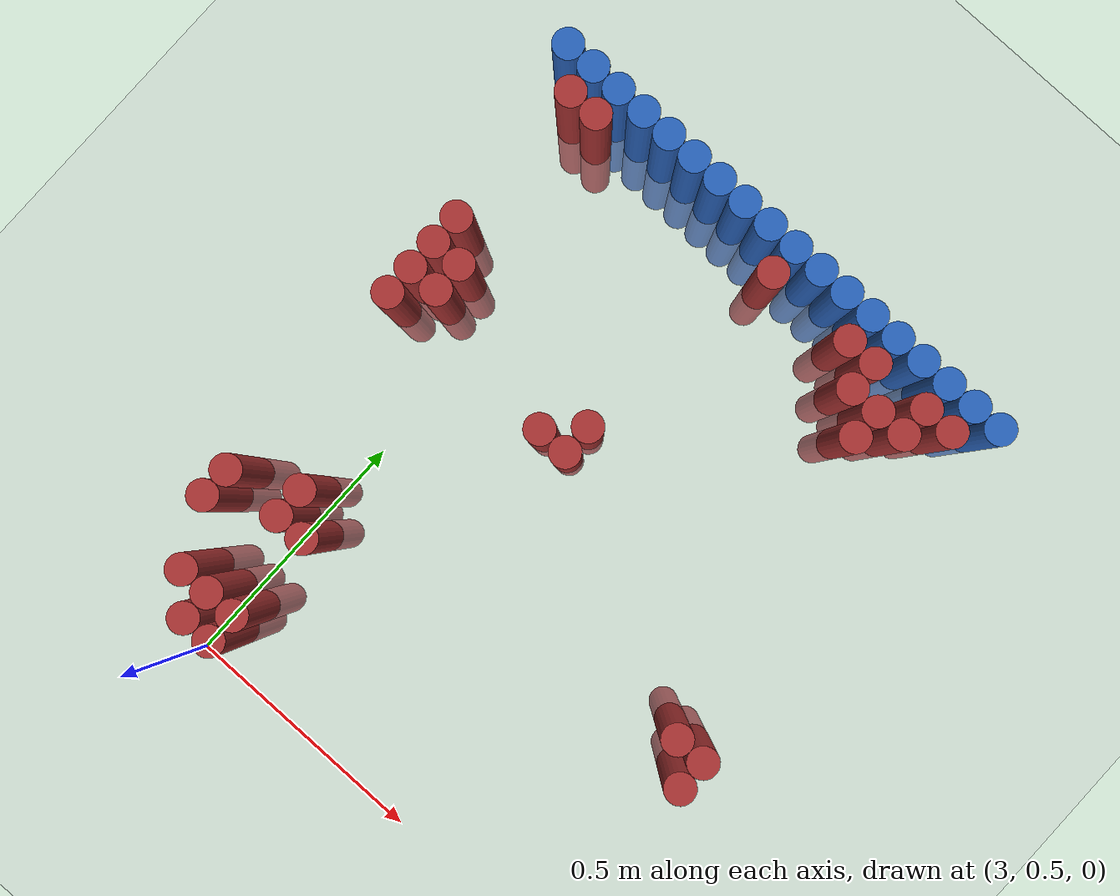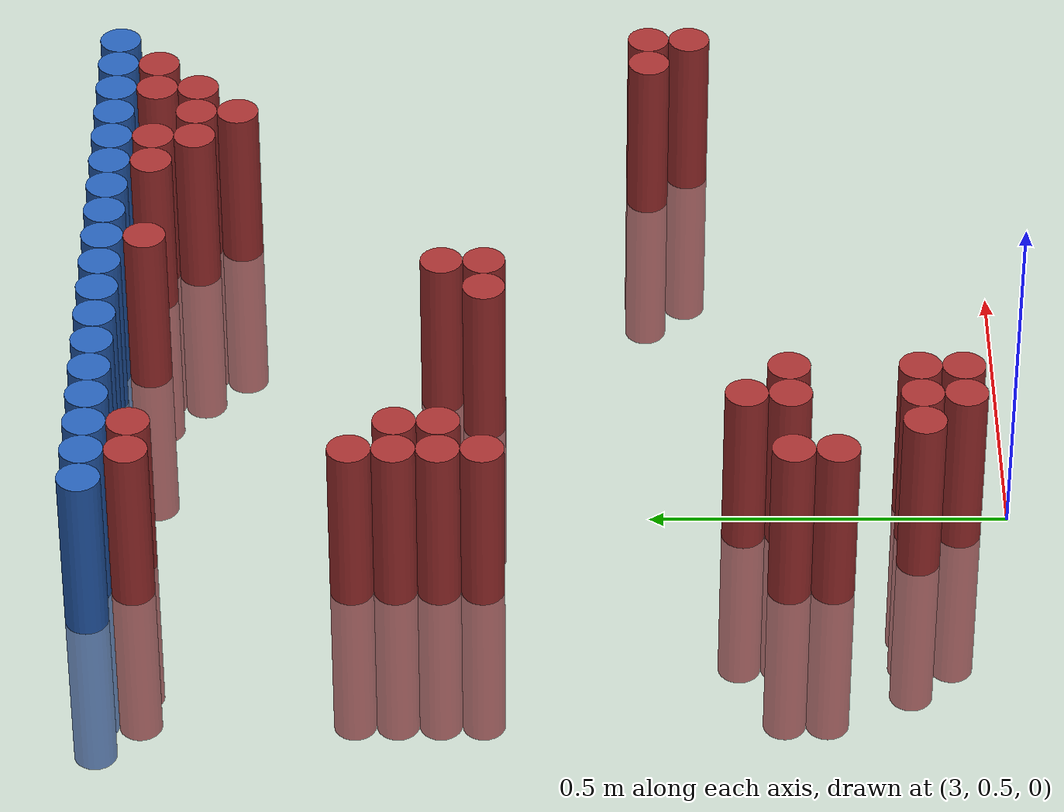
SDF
<sdf version="1.6">
 <world name="default">
  <model name="ground_plane">
   <static>1</static>
   <link name="link">
    <collision name="collision">
     <geometry><plane><normal>0 0 1</normal><size>100 100</size></plane></geometry>
     <surface><friction><ode><mu>100</mu><mu2>50</mu2></ode></friction></surface>
    </collision>
    <visual name="visual">
     <cast_shadows>0</cast_shadows>
     <geometry><plane><normal>0 0 1</normal><size>100 100</size></plane></geometry>
     <material>
      <script><uri>file://media/materials/scripts/gazebo.material</uri><name>Gazebo/Grey</name></script>
     </material>
    </visual>
   </link>
  </model>
  <model name="unit_cylinder_107">
   <static>1</static>
   <pose>2.790000 1.770000 0.000000 0.000000 0.000000 0.000000</pose>
   <link name="link">
    <inertial>
     <mass>1</mass>
     <inertia><ixx>0.145833</ixx><ixy>0</ixy><ixz>0</ixz><iyy>0.145833</iyy><iyz>0</iyz><izz>0.125</izz></inertia>
    </inertial>
    <collision name="collision">
     <geometry><cylinder><radius>0.030000</radius><length>0.5</length></cylinder></geometry>
    </collision>
    <visual name="visual">
     <geometry><cylinder><radius>0.030000</radius><length>0.5</length></cylinder></geometry>
     <material>
      <ambient>0.152000 0.379000 0.720000 1</ambient>
      <diffuse>0.152000 0.379000 0.720000 1</diffuse>
     </material>
     <material>
      <script><name>Gazebo/Grey</name><uri>file://media/materials/scripts/gazebo.material</uri></script>
     </material>
    </visual>
   </link>
  </model>
  <model name="unit_cylinder_108">
   <static>1</static>
   <pose>2.850000 1.770000 0.000000 0.000000 0.000000 0.000000</pose>
   <link name="link">
    <inertial>
     <mass>1</mass>
     <inertia><ixx>0.145833</ixx><ixy>0</ixy><ixz>0</ixz><iyy>0.145833</iyy><iyz>0</iyz><izz>0.125</izz></inertia>
    </inertial>
    <collision name="collision">
     <geometry><cylinder><radius>0.030000</radius><length>0.5</length></cylinder></geometry>
    </collision>
    <visual name="visual">
     <geometry><cylinder><radius>0.030000</radius><length>0.5</length></cylinder></geometry>
     <material>
      <ambient>0.152000 0.379000 0.720000 1</ambient>
      <diffuse>0.152000 0.379000 0.720000 1</diffuse>
     </material>
     <material>
      <script><name>Gazebo/Grey</name><uri>file://media/materials/scripts/gazebo.material</uri></script>
     </material>
    </visual>
   </link>
  </model>
  <model name="unit_cylinder_109">
   <static>1</static>
   <pose>2.910000 1.770000 0.000000 0.000000 0.000000 0.000000</pose>
   <link name="link">
    <inertial>
     <mass>1</mass>
     <inertia><ixx>0.145833</ixx><ixy>0</ixy><ixz>0</ixz><iyy>0.145833</iyy><iyz>0</iyz><izz>0.125</izz></inertia>
    </inertial>
    <collision name="collision">
     <geometry><cylinder><radius>0.030000</radius><length>0.5</length></cylinder></geometry>
    </collision>
    <visual name="visual">
     <geometry><cylinder><radius>0.030000</radius><length>0.5</length></cylinder></geometry>
     <material>
      <ambient>0.152000 0.379000 0.720000 1</ambient>
      <diffuse>0.152000 0.379000 0.720000 1</diffuse>
     </material>
     <material>
      <script><name>Gazebo/Grey</name><uri>file://media/materials/scripts/gazebo.material</uri></script>
     </material>
    </visual>
   </link>
  </model>
  <model name="unit_cylinder_110">
   <static>1</static>
   <pose>2.970000 1.770000 0.000000 0.000000 0.000000 0.000000</pose>
   <link name="link">
    <inertial>
     <mass>1</mass>
     <inertia><ixx>0.145833</ixx><ixy>0</ixy><ixz>0</ixz><iyy>0.145833</iyy><iyz>0</iyz><izz>0.125</izz></inertia>
    </inertial>
    <collision name="collision">
     <geometry><cylinder><radius>0.030000</radius><length>0.5</length></cylinder></geometry>
    </collision>
    <visual name="visual">
     <geometry><cylinder><radius>0.030000</radius><length>0.5</length></cylinder></geometry>
     <material>
      <ambient>0.152000 0.379000 0.720000 1</ambient>
      <diffuse>0.152000 0.379000 0.720000 1</diffuse>
     </material>
     <material>
      <script><name>Gazebo/Grey</name><uri>file://media/materials/scripts/gazebo.material</uri></script>
     </material>
    </visual>
   </link>
  </model>
  <model name="unit_cylinder_111">
   <static>1</static>
   <pose>3.030000 1.770000 0.000000 0.000000 0.000000 0.000000</pose>
   <link name="link">
    <inertial>
     <mass>1</mass>
     <inertia><ixx>0.145833</ixx><ixy>0</ixy><ixz>0</ixz><iyy>0.145833</iyy><iyz>0</iyz><izz>0.125</izz></inertia>
    </inertial>
    <collision name="collision">
     <geometry><cylinder><radius>0.030000</radius><length>0.5</length></cylinder></geometry>
    </collision>
    <visual name="visual">
     <geometry><cylinder><radius>0.030000</radius><length>0.5</length></cylinder></geometry>
     <material>
      <ambient>0.152000 0.379000 0.720000 1</ambient>
      <diffuse>0.152000 0.379000 0.720000 1</diffuse>
     </material>
     <material>
      <script><name>Gazebo/Grey</name><uri>file://media/materials/scripts/gazebo.material</uri></script>
     </material>
    </visual>
   </link>
  </model>
  <model name="unit_cylinder_112">
   <static>1</static>
   <pose>3.090000 1.770000 0.000000 0.000000 0.000000 0.000000</pose>
   <link name="link">
    <inertial>
     <mass>1</mass>
     <inertia><ixx>0.145833</ixx><ixy>0</ixy><ixz>0</ixz><iyy>0.145833</iyy><iyz>0</iyz><izz>0.125</izz></inertia>
    </inertial>
    <collision name="collision">
     <geometry><cylinder><radius>0.030000</radius><length>0.5</length></cylinder></geometry>
    </collision>
    <visual name="visual">
     <geometry><cylinder><radius>0.030000</radius><length>0.5</length></cylinder></geometry>
     <material>
      <ambient>0.152000 0.379000 0.720000 1</ambient>
      <diffuse>0.152000 0.379000 0.720000 1</diffuse>
     </material>
     <material>
      <script><name>Gazebo/Grey</name><uri>file://media/materials/scripts/gazebo.material</uri></script>
     </material>
    </visual>
   </link>
  </model>
  <model name="unit_cylinder_113">
   <static>1</static>
   <pose>3.150000 1.770000 0.000000 0.000000 0.000000 0.000000</pose>
   <link name="link">
    <inertial>
     <mass>1</mass>
     <inertia><ixx>0.145833</ixx><ixy>0</ixy><ixz>0</ixz><iyy>0.145833</iyy><iyz>0</iyz><izz>0.125</izz></inertia>
    </inertial>
    <collision name="collision">
     <geometry><cylinder><radius>0.030000</radius><length>0.5</length></cylinder></geometry>
    </collision>
    <visual name="visual">
     <geometry><cylinder><radius>0.030000</radius><length>0.5</length></cylinder></geometry>
     <material>
      <ambient>0.152000 0.379000 0.720000 1</ambient>
      <diffuse>0.152000 0.379000 0.720000 1</diffuse>
     </material>
     <material>
      <script><name>Gazebo/Grey</name><uri>file://media/materials/scripts/gazebo.material</uri></script>
     </material>
    </visual>
   </link>
  </model>
  <model name="unit_cylinder_114">
   <static>1</static>
   <pose>3.210000 1.770000 0.000000 0.000000 0.000000 0.000000</pose>
   <link name="link">
    <inertial>
     <mass>1</mass>
     <inertia><ixx>0.145833</ixx><ixy>0</ixy><ixz>0</ixz><iyy>0.145833</iyy><iyz>0</iyz><izz>0.125</izz></inertia>
    </inertial>
    <collision name="collision">
     <geometry><cylinder><radius>0.030000</radius><length>0.5</length></cylinder></geometry>
    </collision>
    <visual name="visual">
     <geometry><cylinder><radius>0.030000</radius><length>0.5</length></cylinder></geometry>
     <material>
      <ambient>0.152000 0.379000 0.720000 1</ambient>
      <diffuse>0.152000 0.379000 0.720000 1</diffuse>
     </material>
     <material>
      <script><name>Gazebo/Grey</name><uri>file://media/materials/scripts/gazebo.material</uri></script>
     </material>
    </visual>
   </link>
  </model>
  <model name="unit_cylinder_115">
   <static>1</static>
   <pose>3.270000 1.770000 0.000000 0.000000 0.000000 0.000000</pose>
   <link name="link">
    <inertial>
     <mass>1</mass>
     <inertia><ixx>0.145833</ixx><ixy>0</ixy><ixz>0</ixz><iyy>0.145833</iyy><iyz>0</iyz><izz>0.125</izz></inertia>
    </inertial>
    <collision name="collision">
     <geometry><cylinder><radius>0.030000</radius><length>0.5</length></cylinder></geometry>
    </collision>
    <visual name="visual">
     <geometry><cylinder><radius>0.030000</radius><length>0.5</length></cylinder></geometry>
     <material>
      <ambient>0.152000 0.379000 0.720000 1</ambient>
      <diffuse>0.152000 0.379000 0.720000 1</diffuse>
     </material>
     <material>
      <script><name>Gazebo/Grey</name><uri>file://media/materials/scripts/gazebo.material</uri></script>
     </material>
    </visual>
   </link>
  </model>
  <model name="unit_cylinder_116">
   <static>1</static>
   <pose>3.330000 1.770000 0.000000 0.000000 0.000000 0.000000</pose>
   <link name="link">
    <inertial>
     <mass>1</mass>
     <inertia><ixx>0.145833</ixx><ixy>0</ixy><ixz>0</ixz><iyy>0.145833</iyy><iyz>0</iyz><izz>0.125</izz></inertia>
    </inertial>
    <collision name="collision">
     <geometry><cylinder><radius>0.030000</radius><length>0.5</length></cylinder></geometry>
    </collision>
    <visual name="visual">
     <geometry><cylinder><radius>0.030000</radius><length>0.5</length></cylinder></geometry>
     <material>
      <ambient>0.152000 0.379000 0.720000 1</ambient>
      <diffuse>0.152000 0.379000 0.720000 1</diffuse>
     </material>
     <material>
      <script><name>Gazebo/Grey</name><uri>file://media/materials/scripts/gazebo.material</uri></script>
     </material>
    </visual>
   </link>
  </model>
  <model name="unit_cylinder_117">
   <static>1</static>
   <pose>3.390000 1.770000 0.000000 0.000000 0.000000 0.000000</pose>
   <link name="link">
    <inertial>
     <mass>1</mass>
     <inertia><ixx>0.145833</ixx><ixy>0</ixy><ixz>0</ixz><iyy>0.145833</iyy><iyz>0</iyz><izz>0.125</izz></inertia>
    </inertial>
    <collision name="collision">
     <geometry><cylinder><radius>0.030000</radius><length>0.5</length></cylinder></geometry>
    </collision>
    <visual name="visual">
     <geometry><cylinder><radius>0.030000</radius><length>0.5</length></cylinder></geometry>
     <material>
      <ambient>0.152000 0.379000 0.720000 1</ambient>
      <diffuse>0.152000 0.379000 0.720000 1</diffuse>
     </material>
     <material>
      <script><name>Gazebo/Grey</name><uri>file://media/materials/scripts/gazebo.material</uri></script>
     </material>
    </visual>
   </link>
  </model>
  <model name="unit_cylinder_118">
   <static>1</static>
   <pose>3.450000 1.770000 0.000000 0.000000 0.000000 0.000000</pose>
   <link name="link">
    <inertial>
     <mass>1</mass>
     <inertia><ixx>0.145833</ixx><ixy>0</ixy><ixz>0</ixz><iyy>0.145833</iyy><iyz>0</iyz><izz>0.125</izz></inertia>
    </inertial>
    <collision name="collision">
     <geometry><cylinder><radius>0.030000</radius><length>0.5</length></cylinder></geometry>
    </collision>
    <visual name="visual">
     <geometry><cylinder><radius>0.030000</radius><length>0.5</length></cylinder></geometry>
     <material>
      <ambient>0.152000 0.379000 0.720000 1</ambient>
      <diffuse>0.152000 0.379000 0.720000 1</diffuse>
     </material>
     <material>
      <script><name>Gazebo/Grey</name><uri>file://media/materials/scripts/gazebo.material</uri></script>
     </material>
    </visual>
   </link>
  </model>
  <model name="unit_cylinder_119">
   <static>1</static>
   <pose>3.510000 1.770000 0.000000 0.000000 0.000000 0.000000</pose>
   <link name="link">
    <inertial>
     <mass>1</mass>
     <inertia><ixx>0.145833</ixx><ixy>0</ixy><ixz>0</ixz><iyy>0.145833</iyy><iyz>0</iyz><izz>0.125</izz></inertia>
    </inertial>
    <collision name="collision">
     <geometry><cylinder><radius>0.030000</radius><length>0.5</length></cylinder></geometry>
    </collision>
    <visual name="visual">
     <geometry><cylinder><radius>0.030000</radius><length>0.5</length></cylinder></geometry>
     <material>
      <ambient>0.152000 0.379000 0.720000 1</ambient>
      <diffuse>0.152000 0.379000 0.720000 1</diffuse>
     </material>
     <material>
      <script><name>Gazebo/Grey</name><uri>file://media/materials/scripts/gazebo.material</uri></script>
     </material>
    </visual>
   </link>
  </model>
  <model name="unit_cylinder_120">
   <static>1</static>
   <pose>3.570000 1.770000 0.000000 0.000000 0.000000 0.000000</pose>
   <link name="link">
    <inertial>
     <mass>1</mass>
     <inertia><ixx>0.145833</ixx><ixy>0</ixy><ixz>0</ixz><iyy>0.145833</iyy><iyz>0</iyz><izz>0.125</izz></inertia>
    </inertial>
    <collision name="collision">
     <geometry><cylinder><radius>0.030000</radius><length>0.5</length></cylinder></geometry>
    </collision>
    <visual name="visual">
     <geometry><cylinder><radius>0.030000</radius><length>0.5</length></cylinder></geometry>
     <material>
      <ambient>0.152000 0.379000 0.720000 1</ambient>
      <diffuse>0.152000 0.379000 0.720000 1</diffuse>
     </material>
     <material>
      <script><name>Gazebo/Grey</name><uri>file://media/materials/scripts/gazebo.material</uri></script>
     </material>
    </visual>
   </link>
  </model>
  <model name="unit_cylinder_121">
   <static>1</static>
   <pose>3.630000 1.770000 0.000000 0.000000 0.000000 0.000000</pose>
   <link name="link">
    <inertial>
     <mass>1</mass>
     <inertia><ixx>0.145833</ixx><ixy>0</ixy><ixz>0</ixz><iyy>0.145833</iyy><iyz>0</iyz><izz>0.125</izz></inertia>
    </inertial>
    <collision name="collision">
     <geometry><cylinder><radius>0.030000</radius><length>0.5</length></cylinder></geometry>
    </collision>
    <visual name="visual">
     <geometry><cylinder><radius>0.030000</radius><length>0.5</length></cylinder></geometry>
     <material>
      <ambient>0.152000 0.379000 0.720000 1</ambient>
      <diffuse>0.152000 0.379000 0.720000 1</diffuse>
     </material>
     <material>
      <script><name>Gazebo/Grey</name><uri>file://media/materials/scripts/gazebo.material</uri></script>
     </material>
    </visual>
   </link>
  </model>
  <model name="unit_cylinder_122">
   <static>1</static>
   <pose>3.690000 1.770000 0.000000 0.000000 0.000000 0.000000</pose>
   <link name="link">
    <inertial>
     <mass>1</mass>
     <inertia><ixx>0.145833</ixx><ixy>0</ixy><ixz>0</ixz><iyy>0.145833</iyy><iyz>0</iyz><izz>0.125</izz></inertia>
    </inertial>
    <collision name="collision">
     <geometry><cylinder><radius>0.030000</radius><length>0.5</length></cylinder></geometry>
    </collision>
    <visual name="visual">
     <geometry><cylinder><radius>0.030000</radius><length>0.5</length></cylinder></geometry>
     <material>
      <ambient>0.152000 0.379000 0.720000 1</ambient>
      <diffuse>0.152000 0.379000 0.720000 1</diffuse>
     </material>
     <material>
      <script><name>Gazebo/Grey</name><uri>file://media/materials/scripts/gazebo.material</uri></script>
     </material>
    </visual>
   </link>
  </model>
  <model name="unit_cylinder_123">
   <static>1</static>
   <pose>3.750000 1.770000 0.000000 0.000000 0.000000 0.000000</pose>
   <link name="link">
    <inertial>
     <mass>1</mass>
     <inertia><ixx>0.145833</ixx><ixy>0</ixy><ixz>0</ixz><iyy>0.145833</iyy><iyz>0</iyz><izz>0.125</izz></inertia>
    </inertial>
    <collision name="collision">
     <geometry><cylinder><radius>0.030000</radius><length>0.5</length></cylinder></geometry>
    </collision>
    <visual name="visual">
     <geometry><cylinder><radius>0.030000</radius><length>0.5</length></cylinder></geometry>
     <material>
      <ambient>0.152000 0.379000 0.720000 1</ambient>
      <diffuse>0.152000 0.379000 0.720000 1</diffuse>
     </material>
     <material>
      <script><name>Gazebo/Grey</name><uri>file://media/materials/scripts/gazebo.material</uri></script>
     </material>
    </visual>
   </link>
  </model>
  <model name="unit_cylinder_124">
   <static>1</static>
   <pose>3.810000 1.770000 0.000000 0.000000 0.000000 0.000000</pose>
   <link name="link">
    <inertial>
     <mass>1</mass>
     <inertia><ixx>0.145833</ixx><ixy>0</ixy><ixz>0</ixz><iyy>0.145833</iyy><iyz>0</iyz><izz>0.125</izz></inertia>
    </inertial>
    <collision name="collision">
     <geometry><cylinder><radius>0.030000</radius><length>0.5</length></cylinder></geometry>
    </collision>
    <visual name="visual">
     <geometry><cylinder><radius>0.030000</radius><length>0.5</length></cylinder></geometry>
     <material>
      <ambient>0.152000 0.379000 0.720000 1</ambient>
      <diffuse>0.152000 0.379000 0.720000 1</diffuse>
     </material>
     <material>
      <script><name>Gazebo/Grey</name><uri>file://media/materials/scripts/gazebo.material</uri></script>
     </material>
    </visual>
   </link>
  </model>
  <model name="unit_cylinder_133">
   <static>1</static>
   <pose>2.850000 1.710000 0.000000 0.000000 0.000000 0.000000</pose>
   <link name="link">
    <inertial>
     <mass>1</mass>
     <inertia><ixx>0.145833</ixx><ixy>0</ixy><ixz>0</ixz><iyy>0.145833</iyy><iyz>0</iyz><izz>0.125</izz></inertia>
    </inertial>
    <collision name="collision">
     <geometry><cylinder><radius>0.030000</radius><length>0.5</length></cylinder></geometry>
    </collision>
    <visual name="visual">
     <geometry><cylinder><radius>0.030000</radius><length>0.5</length></cylinder></geometry>
     <material>
      <ambient>0.648000 0.192000 0.192000 1</ambient>
      <diffuse>0.648000 0.192000 0.192000 1</diffuse>
     </material>
     <material>
      <script><name>Gazebo/Grey</name><uri>file://media/materials/scripts/gazebo.material</uri></script>
     </material>
    </visual>
   </link>
  </model>
  <model name="unit_cylinder_134">
   <static>1</static>
   <pose>2.910000 1.710000 0.000000 0.000000 0.000000 0.000000</pose>
   <link name="link">
    <inertial>
     <mass>1</mass>
     <inertia><ixx>0.145833</ixx><ixy>0</ixy><ixz>0</ixz><iyy>0.145833</iyy><iyz>0</iyz><izz>0.125</izz></inertia>
    </inertial>
    <collision name="collision">
     <geometry><cylinder><radius>0.030000</radius><length>0.5</length></cylinder></geometry>
    </collision>
    <visual name="visual">
     <geometry><cylinder><radius>0.030000</radius><length>0.5</length></cylinder></geometry>
     <material>
      <ambient>0.648000 0.192000 0.192000 1</ambient>
      <diffuse>0.648000 0.192000 0.192000 1</diffuse>
     </material>
     <material>
      <script><name>Gazebo/Grey</name><uri>file://media/materials/scripts/gazebo.material</uri></script>
     </material>
    </visual>
   </link>
  </model>
  <model name="unit_cylinder_135">
   <static>1</static>
   <pose>3.330000 1.710000 0.000000 0.000000 0.000000 0.000000</pose>
   <link name="link">
    <inertial>
     <mass>1</mass>
     <inertia><ixx>0.145833</ixx><ixy>0</ixy><ixz>0</ixz><iyy>0.145833</iyy><iyz>0</iyz><izz>0.125</izz></inertia>
    </inertial>
    <collision name="collision">
     <geometry><cylinder><radius>0.030000</radius><length>0.5</length></cylinder></geometry>
    </collision>
    <visual name="visual">
     <geometry><cylinder><radius>0.030000</radius><length>0.5</length></cylinder></geometry>
     <material>
      <ambient>0.648000 0.192000 0.192000 1</ambient>
      <diffuse>0.648000 0.192000 0.192000 1</diffuse>
     </material>
     <material>
      <script><name>Gazebo/Grey</name><uri>file://media/materials/scripts/gazebo.material</uri></script>
     </material>
    </visual>
   </link>
  </model>
  <model name="unit_cylinder_136">
   <static>1</static>
   <pose>3.510000 1.710000 0.000000 0.000000 0.000000 0.000000</pose>
   <link name="link">
    <inertial>
     <mass>1</mass>
     <inertia><ixx>0.145833</ixx><ixy>0</ixy><ixz>0</ixz><iyy>0.145833</iyy><iyz>0</iyz><izz>0.125</izz></inertia>
    </inertial>
    <collision name="collision">
     <geometry><cylinder><radius>0.030000</radius><length>0.5</length></cylinder></geometry>
    </collision>
    <visual name="visual">
     <geometry><cylinder><radius>0.030000</radius><length>0.5</length></cylinder></geometry>
     <material>
      <ambient>0.648000 0.192000 0.192000 1</ambient>
      <diffuse>0.648000 0.192000 0.192000 1</diffuse>
     </material>
     <material>
      <script><name>Gazebo/Grey</name><uri>file://media/materials/scripts/gazebo.material</uri></script>
     </material>
    </visual>
   </link>
  </model>
  <model name="unit_cylinder_137">
   <static>1</static>
   <pose>3.570000 1.710000 0.000000 0.000000 0.000000 0.000000</pose>
   <link name="link">
    <inertial>
     <mass>1</mass>
     <inertia><ixx>0.145833</ixx><ixy>0</ixy><ixz>0</ixz><iyy>0.145833</iyy><iyz>0</iyz><izz>0.125</izz></inertia>
    </inertial>
    <collision name="collision">
     <geometry><cylinder><radius>0.030000</radius><length>0.5</length></cylinder></geometry>
    </collision>
    <visual name="visual">
     <geometry><cylinder><radius>0.030000</radius><length>0.5</length></cylinder></geometry>
     <material>
      <ambient>0.648000 0.192000 0.192000 1</ambient>
      <diffuse>0.648000 0.192000 0.192000 1</diffuse>
     </material>
     <material>
      <script><name>Gazebo/Grey</name><uri>file://media/materials/scripts/gazebo.material</uri></script>
     </material>
    </visual>
   </link>
  </model>
  <model name="unit_cylinder_138">
   <static>1</static>
   <pose>3.690000 1.710000 0.000000 0.000000 0.000000 0.000000</pose>
   <link name="link">
    <inertial>
     <mass>1</mass>
     <inertia><ixx>0.145833</ixx><ixy>0</ixy><ixz>0</ixz><iyy>0.145833</iyy><iyz>0</iyz><izz>0.125</izz></inertia>
    </inertial>
    <collision name="collision">
     <geometry><cylinder><radius>0.030000</radius><length>0.5</length></cylinder></geometry>
    </collision>
    <visual name="visual">
     <geometry><cylinder><radius>0.030000</radius><length>0.5</length></cylinder></geometry>
     <material>
      <ambient>0.648000 0.192000 0.192000 1</ambient>
      <diffuse>0.648000 0.192000 0.192000 1</diffuse>
     </material>
     <material>
      <script><name>Gazebo/Grey</name><uri>file://media/materials/scripts/gazebo.material</uri></script>
     </material>
    </visual>
   </link>
  </model>
  <model name="unit_cylinder_139">
   <static>1</static>
   <pose>3.750000 1.710000 0.000000 0.000000 0.000000 0.000000</pose>
   <link name="link">
    <inertial>
     <mass>1</mass>
     <inertia><ixx>0.145833</ixx><ixy>0</ixy><ixz>0</ixz><iyy>0.145833</iyy><iyz>0</iyz><izz>0.125</izz></inertia>
    </inertial>
    <collision name="collision">
     <geometry><cylinder><radius>0.030000</radius><length>0.5</length></cylinder></geometry>
    </collision>
    <visual name="visual">
     <geometry><cylinder><radius>0.030000</radius><length>0.5</length></cylinder></geometry>
     <material>
      <ambient>0.648000 0.192000 0.192000 1</ambient>
      <diffuse>0.648000 0.192000 0.192000 1</diffuse>
     </material>
     <material>
      <script><name>Gazebo/Grey</name><uri>file://media/materials/scripts/gazebo.material</uri></script>
     </material>
    </visual>
   </link>
  </model>
  <model name="unit_cylinder_142">
   <static>1</static>
   <pose>3.570000 1.650000 0.000000 0.000000 0.000000 0.000000</pose>
   <link name="link">
    <inertial>
     <mass>1</mass>
     <inertia><ixx>0.145833</ixx><ixy>0</ixy><ixz>0</ixz><iyy>0.145833</iyy><iyz>0</iyz><izz>0.125</izz></inertia>
    </inertial>
    <collision name="collision">
     <geometry><cylinder><radius>0.030000</radius><length>0.5</length></cylinder></geometry>
    </collision>
    <visual name="visual">
     <geometry><cylinder><radius>0.030000</radius><length>0.5</length></cylinder></geometry>
     <material>
      <ambient>0.648000 0.192000 0.192000 1</ambient>
      <diffuse>0.648000 0.192000 0.192000 1</diffuse>
     </material>
     <material>
      <script><name>Gazebo/Grey</name><uri>file://media/materials/scripts/gazebo.material</uri></script>
     </material>
    </visual>
   </link>
  </model>
  <model name="unit_cylinder_143">
   <static>1</static>
   <pose>3.630000 1.650000 0.000000 0.000000 0.000000 0.000000</pose>
   <link name="link">
    <inertial>
     <mass>1</mass>
     <inertia><ixx>0.145833</ixx><ixy>0</ixy><ixz>0</ixz><iyy>0.145833</iyy><iyz>0</iyz><izz>0.125</izz></inertia>
    </inertial>
    <collision name="collision">
     <geometry><cylinder><radius>0.030000</radius><length>0.5</length></cylinder></geometry>
    </collision>
    <visual name="visual">
     <geometry><cylinder><radius>0.030000</radius><length>0.5</length></cylinder></geometry>
     <material>
      <ambient>0.648000 0.192000 0.192000 1</ambient>
      <diffuse>0.648000 0.192000 0.192000 1</diffuse>
     </material>
     <material>
      <script><name>Gazebo/Grey</name><uri>file://media/materials/scripts/gazebo.material</uri></script>
     </material>
    </visual>
   </link>
  </model>
  <model name="unit_cylinder_144">
   <static>1</static>
   <pose>3.690000 1.650000 0.000000 0.000000 0.000000 0.000000</pose>
   <link name="link">
    <inertial>
     <mass>1</mass>
     <inertia><ixx>0.145833</ixx><ixy>0</ixy><ixz>0</ixz><iyy>0.145833</iyy><iyz>0</iyz><izz>0.125</izz></inertia>
    </inertial>
    <collision name="collision">
     <geometry><cylinder><radius>0.030000</radius><length>0.5</length></cylinder></geometry>
    </collision>
    <visual name="visual">
     <geometry><cylinder><radius>0.030000</radius><length>0.5</length></cylinder></geometry>
     <material>
      <ambient>0.648000 0.192000 0.192000 1</ambient>
      <diffuse>0.648000 0.192000 0.192000 1</diffuse>
     </material>
     <material>
      <script><name>Gazebo/Grey</name><uri>file://media/materials/scripts/gazebo.material</uri></script>
     </material>
    </visual>
   </link>
  </model>
  <model name="unit_cylinder_145">
   <static>1</static>
   <pose>3.630000 1.590000 0.000000 0.000000 0.000000 0.000000</pose>
   <link name="link">
    <inertial>
     <mass>1</mass>
     <inertia><ixx>0.145833</ixx><ixy>0</ixy><ixz>0</ixz><iyy>0.145833</iyy><iyz>0</iyz><izz>0.125</izz></inertia>
    </inertial>
    <collision name="collision">
     <geometry><cylinder><radius>0.030000</radius><length>0.5</length></cylinder></geometry>
    </collision>
    <visual name="visual">
     <geometry><cylinder><radius>0.030000</radius><length>0.5</length></cylinder></geometry>
     <material>
      <ambient>0.648000 0.192000 0.192000 1</ambient>
      <diffuse>0.648000 0.192000 0.192000 1</diffuse>
     </material>
     <material>
      <script><name>Gazebo/Grey</name><uri>file://media/materials/scripts/gazebo.material</uri></script>
     </material>
    </visual>
   </link>
  </model>
  <model name="unit_cylinder_153">
   <static>1</static>
   <pose>2.850000 1.410000 0.000000 0.000000 0.000000 0.000000</pose>
   <link name="link">
    <inertial>
     <mass>1</mass>
     <inertia><ixx>0.145833</ixx><ixy>0</ixy><ixz>0</ixz><iyy>0.145833</iyy><iyz>0</iyz><izz>0.125</izz></inertia>
    </inertial>
    <collision name="collision">
     <geometry><cylinder><radius>0.030000</radius><length>0.5</length></cylinder></geometry>
    </collision>
    <visual name="visual">
     <geometry><cylinder><radius>0.030000</radius><length>0.5</length></cylinder></geometry>
     <material>
      <ambient>0.648000 0.192000 0.192000 1</ambient>
      <diffuse>0.648000 0.192000 0.192000 1</diffuse>
     </material>
     <material>
      <script><name>Gazebo/Grey</name><uri>file://media/materials/scripts/gazebo.material</uri></script>
     </material>
    </visual>
   </link>
  </model>
  <model name="unit_cylinder_157">
   <static>1</static>
   <pose>2.850000 1.350000 0.000000 0.000000 0.000000 0.000000</pose>
   <link name="link">
    <inertial>
     <mass>1</mass>
     <inertia><ixx>0.145833</ixx><ixy>0</ixy><ixz>0</ixz><iyy>0.145833</iyy><iyz>0</iyz><izz>0.125</izz></inertia>
    </inertial>
    <collision name="collision">
     <geometry><cylinder><radius>0.030000</radius><length>0.5</length></cylinder></geometry>
    </collision>
    <visual name="visual">
     <geometry><cylinder><radius>0.030000</radius><length>0.5</length></cylinder></geometry>
     <material>
      <ambient>0.648000 0.192000 0.192000 1</ambient>
      <diffuse>0.648000 0.192000 0.192000 1</diffuse>
     </material>
     <material>
      <script><name>Gazebo/Grey</name><uri>file://media/materials/scripts/gazebo.material</uri></script>
     </material>
    </visual>
   </link>
  </model>
  <model name="unit_cylinder_158">
   <static>1</static>
   <pose>2.910000 1.350000 0.000000 0.000000 0.000000 0.000000</pose>
   <link name="link">
    <inertial>
     <mass>1</mass>
     <inertia><ixx>0.145833</ixx><ixy>0</ixy><ixz>0</ixz><iyy>0.145833</iyy><iyz>0</iyz><izz>0.125</izz></inertia>
    </inertial>
    <collision name="collision">
     <geometry><cylinder><radius>0.030000</radius><length>0.5</length></cylinder></geometry>
    </collision>
    <visual name="visual">
     <geometry><cylinder><radius>0.030000</radius><length>0.5</length></cylinder></geometry>
     <material>
      <ambient>0.648000 0.192000 0.192000 1</ambient>
      <diffuse>0.648000 0.192000 0.192000 1</diffuse>
     </material>
     <material>
      <script><name>Gazebo/Grey</name><uri>file://media/materials/scripts/gazebo.material</uri></script>
     </material>
    </visual>
   </link>
  </model>
  <model name="unit_cylinder_162">
   <static>1</static>
   <pose>2.850000 1.290000 0.000000 0.000000 0.000000 0.000000</pose>
   <link name="link">
    <inertial>
     <mass>1</mass>
     <inertia><ixx>0.145833</ixx><ixy>0</ixy><ixz>0</ixz><iyy>0.145833</iyy><iyz>0</iyz><izz>0.125</izz></inertia>
    </inertial>
    <collision name="collision">
     <geometry><cylinder><radius>0.030000</radius><length>0.5</length></cylinder></geometry>
    </collision>
    <visual name="visual">
     <geometry><cylinder><radius>0.030000</radius><length>0.5</length></cylinder></geometry>
     <material>
      <ambient>0.648000 0.192000 0.192000 1</ambient>
      <diffuse>0.648000 0.192000 0.192000 1</diffuse>
     </material>
     <material>
      <script><name>Gazebo/Grey</name><uri>file://media/materials/scripts/gazebo.material</uri></script>
     </material>
    </visual>
   </link>
  </model>
  <model name="unit_cylinder_163">
   <static>1</static>
   <pose>2.910000 1.290000 0.000000 0.000000 0.000000 0.000000</pose>
   <link name="link">
    <inertial>
     <mass>1</mass>
     <inertia><ixx>0.145833</ixx><ixy>0</ixy><ixz>0</ixz><iyy>0.145833</iyy><iyz>0</iyz><izz>0.125</izz></inertia>
    </inertial>
    <collision name="collision">
     <geometry><cylinder><radius>0.030000</radius><length>0.5</length></cylinder></geometry>
    </collision>
    <visual name="visual">
     <geometry><cylinder><radius>0.030000</radius><length>0.5</length></cylinder></geometry>
     <material>
      <ambient>0.648000 0.192000 0.192000 1</ambient>
      <diffuse>0.648000 0.192000 0.192000 1</diffuse>
     </material>
     <material>
      <script><name>Gazebo/Grey</name><uri>file://media/materials/scripts/gazebo.material</uri></script>
     </material>
    </visual>
   </link>
  </model>
  <model name="unit_cylinder_164">
   <static>1</static>
   <pose>3.270000 1.290000 0.000000 0.000000 0.000000 0.000000</pose>
   <link name="link">
    <inertial>
     <mass>1</mass>
     <inertia><ixx>0.145833</ixx><ixy>0</ixy><ixz>0</ixz><iyy>0.145833</iyy><iyz>0</iyz><izz>0.125</izz></inertia>
    </inertial>
    <collision name="collision">
     <geometry><cylinder><radius>0.030000</radius><length>0.5</length></cylinder></geometry>
    </collision>
    <visual name="visual">
     <geometry><cylinder><radius>0.030000</radius><length>0.5</length></cylinder></geometry>
     <material>
      <ambient>0.648000 0.192000 0.192000 1</ambient>
      <diffuse>0.648000 0.192000 0.192000 1</diffuse>
     </material>
     <material>
      <script><name>Gazebo/Grey</name><uri>file://media/materials/scripts/gazebo.material</uri></script>
     </material>
    </visual>
   </link>
  </model>
  <model name="unit_cylinder_165">
   <static>1</static>
   <pose>2.850000 1.230000 0.000000 0.000000 0.000000 0.000000</pose>
   <link name="link">
    <inertial>
     <mass>1</mass>
     <inertia><ixx>0.145833</ixx><ixy>0</ixy><ixz>0</ixz><iyy>0.145833</iyy><iyz>0</iyz><izz>0.125</izz></inertia>
    </inertial>
    <collision name="collision">
     <geometry><cylinder><radius>0.030000</radius><length>0.5</length></cylinder></geometry>
    </collision>
    <visual name="visual">
     <geometry><cylinder><radius>0.030000</radius><length>0.5</length></cylinder></geometry>
     <material>
      <ambient>0.648000 0.192000 0.192000 1</ambient>
      <diffuse>0.648000 0.192000 0.192000 1</diffuse>
     </material>
     <material>
      <script><name>Gazebo/Grey</name><uri>file://media/materials/scripts/gazebo.material</uri></script>
     </material>
    </visual>
   </link>
  </model>
  <model name="unit_cylinder_166">
   <static>1</static>
   <pose>3.210000 1.230000 0.000000 0.000000 0.000000 0.000000</pose>
   <link name="link">
    <inertial>
     <mass>1</mass>
     <inertia><ixx>0.145833</ixx><ixy>0</ixy><ixz>0</ixz><iyy>0.145833</iyy><iyz>0</iyz><izz>0.125</izz></inertia>
    </inertial>
    <collision name="collision">
     <geometry><cylinder><radius>0.030000</radius><length>0.5</length></cylinder></geometry>
    </collision>
    <visual name="visual">
     <geometry><cylinder><radius>0.030000</radius><length>0.5</length></cylinder></geometry>
     <material>
      <ambient>0.648000 0.192000 0.192000 1</ambient>
      <diffuse>0.648000 0.192000 0.192000 1</diffuse>
     </material>
     <material>
      <script><name>Gazebo/Grey</name><uri>file://media/materials/scripts/gazebo.material</uri></script>
     </material>
    </visual>
   </link>
  </model>
  <model name="unit_cylinder_167">
   <static>1</static>
   <pose>3.270000 1.230000 0.000000 0.000000 0.000000 0.000000</pose>
   <link name="link">
    <inertial>
     <mass>1</mass>
     <inertia><ixx>0.145833</ixx><ixy>0</ixy><ixz>0</ixz><iyy>0.145833</iyy><iyz>0</iyz><izz>0.125</izz></inertia>
    </inertial>
    <collision name="collision">
     <geometry><cylinder><radius>0.030000</radius><length>0.5</length></cylinder></geometry>
    </collision>
    <visual name="visual">
     <geometry><cylinder><radius>0.030000</radius><length>0.5</length></cylinder></geometry>
     <material>
      <ambient>0.648000 0.192000 0.192000 1</ambient>
      <diffuse>0.648000 0.192000 0.192000 1</diffuse>
     </material>
     <material>
      <script><name>Gazebo/Grey</name><uri>file://media/materials/scripts/gazebo.material</uri></script>
     </material>
    </visual>
   </link>
  </model>
  <model name="unit_cylinder_178">
   <static>1</static>
   <pose>3.750000 0.990000 0.000000 0.000000 0.000000 0.000000</pose>
   <link name="link">
    <inertial>
     <mass>1</mass>
     <inertia><ixx>0.145833</ixx><ixy>0</ixy><ixz>0</ixz><iyy>0.145833</iyy><iyz>0</iyz><izz>0.125</izz></inertia>
    </inertial>
    <collision name="collision">
     <geometry><cylinder><radius>0.030000</radius><length>0.5</length></cylinder></geometry>
    </collision>
    <visual name="visual">
     <geometry><cylinder><radius>0.030000</radius><length>0.5</length></cylinder></geometry>
     <material>
      <ambient>0.648000 0.192000 0.192000 1</ambient>
      <diffuse>0.648000 0.192000 0.192000 1</diffuse>
     </material>
     <material>
      <script><name>Gazebo/Grey</name><uri>file://media/materials/scripts/gazebo.material</uri></script>
     </material>
    </visual>
   </link>
  </model>
  <model name="unit_cylinder_179">
   <static>1</static>
   <pose>3.810000 0.990000 0.000000 0.000000 0.000000 0.000000</pose>
   <link name="link">
    <inertial>
     <mass>1</mass>
     <inertia><ixx>0.145833</ixx><ixy>0</ixy><ixz>0</ixz><iyy>0.145833</iyy><iyz>0</iyz><izz>0.125</izz></inertia>
    </inertial>
    <collision name="collision">
     <geometry><cylinder><radius>0.030000</radius><length>0.5</length></cylinder></geometry>
    </collision>
    <visual name="visual">
     <geometry><cylinder><radius>0.030000</radius><length>0.5</length></cylinder></geometry>
     <material>
      <ambient>0.648000 0.192000 0.192000 1</ambient>
      <diffuse>0.648000 0.192000 0.192000 1</diffuse>
     </material>
     <material>
      <script><name>Gazebo/Grey</name><uri>file://media/materials/scripts/gazebo.material</uri></script>
     </material>
    </visual>
   </link>
  </model>
  <model name="unit_cylinder_181">
   <static>1</static>
   <pose>3.810000 0.930000 0.000000 0.000000 0.000000 0.000000</pose>
   <link name="link">
    <inertial>
     <mass>1</mass>
     <inertia><ixx>0.145833</ixx><ixy>0</ixy><ixz>0</ixz><iyy>0.145833</iyy><iyz>0</iyz><izz>0.125</izz></inertia>
    </inertial>
    <collision name="collision">
     <geometry><cylinder><radius>0.030000</radius><length>0.5</length></cylinder></geometry>
    </collision>
    <visual name="visual">
     <geometry><cylinder><radius>0.030000</radius><length>0.5</length></cylinder></geometry>
     <material>
      <ambient>0.648000 0.192000 0.192000 1</ambient>
      <diffuse>0.648000 0.192000 0.192000 1</diffuse>
     </material>
     <material>
      <script><name>Gazebo/Grey</name><uri>file://media/materials/scripts/gazebo.material</uri></script>
     </material>
    </visual>
   </link>
  </model>
  <model name="unit_cylinder_182">
   <static>1</static>
   <pose>2.970000 0.870000 0.000000 0.000000 0.000000 0.000000</pose>
   <link name="link">
    <inertial>
     <mass>1</mass>
     <inertia><ixx>0.145833</ixx><ixy>0</ixy><ixz>0</ixz><iyy>0.145833</iyy><iyz>0</iyz><izz>0.125</izz></inertia>
    </inertial>
    <collision name="collision">
     <geometry><cylinder><radius>0.030000</radius><length>0.5</length></cylinder></geometry>
    </collision>
    <visual name="visual">
     <geometry><cylinder><radius>0.030000</radius><length>0.5</length></cylinder></geometry>
     <material>
      <ambient>0.648000 0.192000 0.192000 1</ambient>
      <diffuse>0.648000 0.192000 0.192000 1</diffuse>
     </material>
     <material>
      <script><name>Gazebo/Grey</name><uri>file://media/materials/scripts/gazebo.material</uri></script>
     </material>
    </visual>
   </link>
  </model>
  <model name="unit_cylinder_184">
   <static>1</static>
   <pose>2.850000 0.810000 0.000000 0.000000 0.000000 0.000000</pose>
   <link name="link">
    <inertial>
     <mass>1</mass>
     <inertia><ixx>0.145833</ixx><ixy>0</ixy><ixz>0</ixz><iyy>0.145833</iyy><iyz>0</iyz><izz>0.125</izz></inertia>
    </inertial>
    <collision name="collision">
     <geometry><cylinder><radius>0.030000</radius><length>0.5</length></cylinder></geometry>
    </collision>
    <visual name="visual">
     <geometry><cylinder><radius>0.030000</radius><length>0.5</length></cylinder></geometry>
     <material>
      <ambient>0.648000 0.192000 0.192000 1</ambient>
      <diffuse>0.648000 0.192000 0.192000 1</diffuse>
     </material>
     <material>
      <script><name>Gazebo/Grey</name><uri>file://media/materials/scripts/gazebo.material</uri></script>
     </material>
    </visual>
   </link>
  </model>
  <model name="unit_cylinder_185">
   <static>1</static>
   <pose>2.970000 0.810000 0.000000 0.000000 0.000000 0.000000</pose>
   <link name="link">
    <inertial>
     <mass>1</mass>
     <inertia><ixx>0.145833</ixx><ixy>0</ixy><ixz>0</ixz><iyy>0.145833</iyy><iyz>0</iyz><izz>0.125</izz></inertia>
    </inertial>
    <collision name="collision">
     <geometry><cylinder><radius>0.030000</radius><length>0.5</length></cylinder></geometry>
    </collision>
    <visual name="visual">
     <geometry><cylinder><radius>0.030000</radius><length>0.5</length></cylinder></geometry>
     <material>
      <ambient>0.648000 0.192000 0.192000 1</ambient>
      <diffuse>0.648000 0.192000 0.192000 1</diffuse>
     </material>
     <material>
      <script><name>Gazebo/Grey</name><uri>file://media/materials/scripts/gazebo.material</uri></script>
     </material>
    </visual>
   </link>
  </model>
  <model name="unit_cylinder_186">
   <static>1</static>
   <pose>3.030000 0.810000 0.000000 0.000000 0.000000 0.000000</pose>
   <link name="link">
    <inertial>
     <mass>1</mass>
     <inertia><ixx>0.145833</ixx><ixy>0</ixy><ixz>0</ixz><iyy>0.145833</iyy><iyz>0</iyz><izz>0.125</izz></inertia>
    </inertial>
    <collision name="collision">
     <geometry><cylinder><radius>0.030000</radius><length>0.5</length></cylinder></geometry>
    </collision>
    <visual name="visual">
     <geometry><cylinder><radius>0.030000</radius><length>0.5</length></cylinder></geometry>
     <material>
      <ambient>0.648000 0.192000 0.192000 1</ambient>
      <diffuse>0.648000 0.192000 0.192000 1</diffuse>
     </material>
     <material>
      <script><name>Gazebo/Grey</name><uri>file://media/materials/scripts/gazebo.material</uri></script>
     </material>
    </visual>
   </link>
  </model>
  <model name="unit_cylinder_187">
   <static>1</static>
   <pose>2.850000 0.750000 0.000000 0.000000 0.000000 0.000000</pose>
   <link name="link">
    <inertial>
     <mass>1</mass>
     <inertia><ixx>0.145833</ixx><ixy>0</ixy><ixz>0</ixz><iyy>0.145833</iyy><iyz>0</iyz><izz>0.125</izz></inertia>
    </inertial>
    <collision name="collision">
     <geometry><cylinder><radius>0.030000</radius><length>0.5</length></cylinder></geometry>
    </collision>
    <visual name="visual">
     <geometry><cylinder><radius>0.030000</radius><length>0.5</length></cylinder></geometry>
     <material>
      <ambient>0.648000 0.192000 0.192000 1</ambient>
      <diffuse>0.648000 0.192000 0.192000 1</diffuse>
     </material>
     <material>
      <script><name>Gazebo/Grey</name><uri>file://media/materials/scripts/gazebo.material</uri></script>
     </material>
    </visual>
   </link>
  </model>
  <model name="unit_cylinder_194">
   <static>1</static>
   <pose>2.910000 0.630000 0.000000 0.000000 0.000000 0.000000</pose>
   <link name="link">
    <inertial>
     <mass>1</mass>
     <inertia><ixx>0.145833</ixx><ixy>0</ixy><ixz>0</ixz><iyy>0.145833</iyy><iyz>0</iyz><izz>0.125</izz></inertia>
    </inertial>
    <collision name="collision">
     <geometry><cylinder><radius>0.030000</radius><length>0.5</length></cylinder></geometry>
    </collision>
    <visual name="visual">
     <geometry><cylinder><radius>0.030000</radius><length>0.5</length></cylinder></geometry>
     <material>
      <ambient>0.648000 0.192000 0.192000 1</ambient>
      <diffuse>0.648000 0.192000 0.192000 1</diffuse>
     </material>
     <material>
      <script><name>Gazebo/Grey</name><uri>file://media/materials/scripts/gazebo.material</uri></script>
     </material>
    </visual>
   </link>
  </model>
  <model name="unit_cylinder_195">
   <static>1</static>
   <pose>2.970000 0.630000 0.000000 0.000000 0.000000 0.000000</pose>
   <link name="link">
    <inertial>
     <mass>1</mass>
     <inertia><ixx>0.145833</ixx><ixy>0</ixy><ixz>0</ixz><iyy>0.145833</iyy><iyz>0</iyz><izz>0.125</izz></inertia>
    </inertial>
    <collision name="collision">
     <geometry><cylinder><radius>0.030000</radius><length>0.5</length></cylinder></geometry>
    </collision>
    <visual name="visual">
     <geometry><cylinder><radius>0.030000</radius><length>0.5</length></cylinder></geometry>
     <material>
      <ambient>0.648000 0.192000 0.192000 1</ambient>
      <diffuse>0.648000 0.192000 0.192000 1</diffuse>
     </material>
     <material>
      <script><name>Gazebo/Grey</name><uri>file://media/materials/scripts/gazebo.material</uri></script>
     </material>
    </visual>
   </link>
  </model>
  <model name="unit_cylinder_196">
   <static>1</static>
   <pose>3.030000 0.630000 0.000000 0.000000 0.000000 0.000000</pose>
   <link name="link">
    <inertial>
     <mass>1</mass>
     <inertia><ixx>0.145833</ixx><ixy>0</ixy><ixz>0</ixz><iyy>0.145833</iyy><iyz>0</iyz><izz>0.125</izz></inertia>
    </inertial>
    <collision name="collision">
     <geometry><cylinder><radius>0.030000</radius><length>0.5</length></cylinder></geometry>
    </collision>
    <visual name="visual">
     <geometry><cylinder><radius>0.030000</radius><length>0.5</length></cylinder></geometry>
     <material>
      <ambient>0.648000 0.192000 0.192000 1</ambient>
      <diffuse>0.648000 0.192000 0.192000 1</diffuse>
     </material>
     <material>
      <script><name>Gazebo/Grey</name><uri>file://media/materials/scripts/gazebo.material</uri></script>
     </material>
    </visual>
   </link>
  </model>
  <model name="unit_cylinder_199">
   <static>1</static>
   <pose>2.970000 0.570000 0.000000 0.000000 0.000000 0.000000</pose>
   <link name="link">
    <inertial>
     <mass>1</mass>
     <inertia><ixx>0.145833</ixx><ixy>0</ixy><ixz>0</ixz><iyy>0.145833</iyy><iyz>0</iyz><izz>0.125</izz></inertia>
    </inertial>
    <collision name="collision">
     <geometry><cylinder><radius>0.030000</radius><length>0.5</length></cylinder></geometry>
    </collision>
    <visual name="visual">
     <geometry><cylinder><radius>0.030000</radius><length>0.5</length></cylinder></geometry>
     <material>
      <ambient>0.648000 0.192000 0.192000 1</ambient>
      <diffuse>0.648000 0.192000 0.192000 1</diffuse>
     </material>
     <material>
      <script><name>Gazebo/Grey</name><uri>file://media/materials/scripts/gazebo.material</uri></script>
     </material>
    </visual>
   </link>
  </model>
  <model name="unit_cylinder_200">
   <static>1</static>
   <pose>3.030000 0.570000 0.000000 0.000000 0.000000 0.000000</pose>
   <link name="link">
    <inertial>
     <mass>1</mass>
     <inertia><ixx>0.145833</ixx><ixy>0</ixy><ixz>0</ixz><iyy>0.145833</iyy><iyz>0</iyz><izz>0.125</izz></inertia>
    </inertial>
    <collision name="collision">
     <geometry><cylinder><radius>0.030000</radius><length>0.5</length></cylinder></geometry>
    </collision>
    <visual name="visual">
     <geometry><cylinder><radius>0.030000</radius><length>0.5</length></cylinder></geometry>
     <material>
      <ambient>0.648000 0.192000 0.192000 1</ambient>
      <diffuse>0.648000 0.192000 0.192000 1</diffuse>
     </material>
     <material>
      <script><name>Gazebo/Grey</name><uri>file://media/materials/scripts/gazebo.material</uri></script>
     </material>
    </visual>
   </link>
  </model>
 </world>
</sdf>
